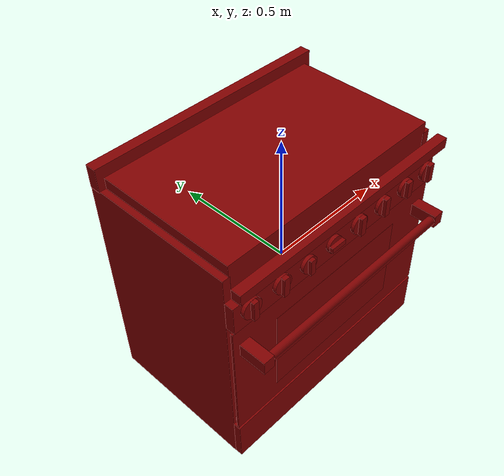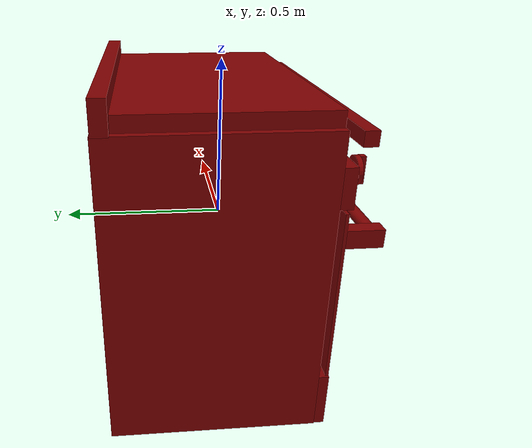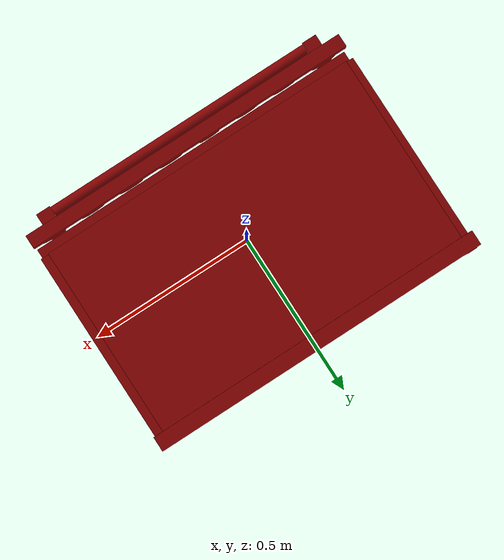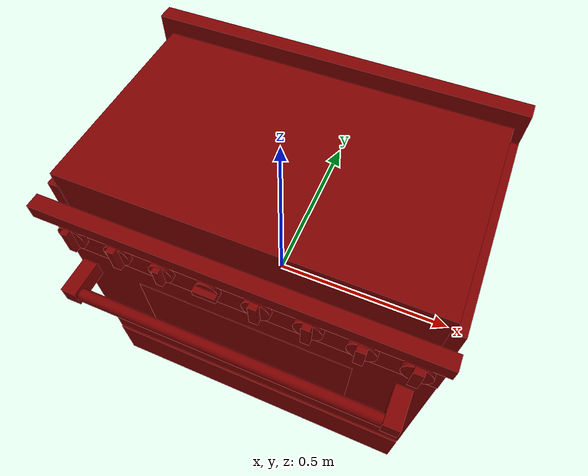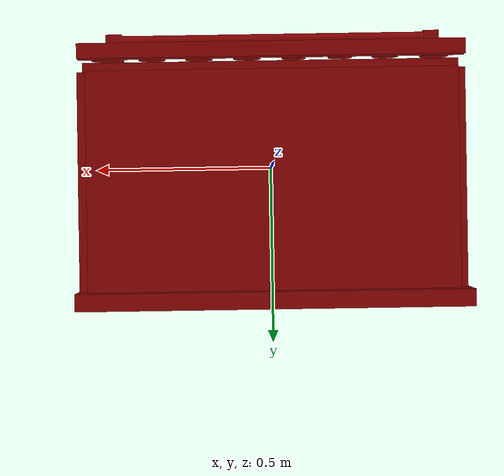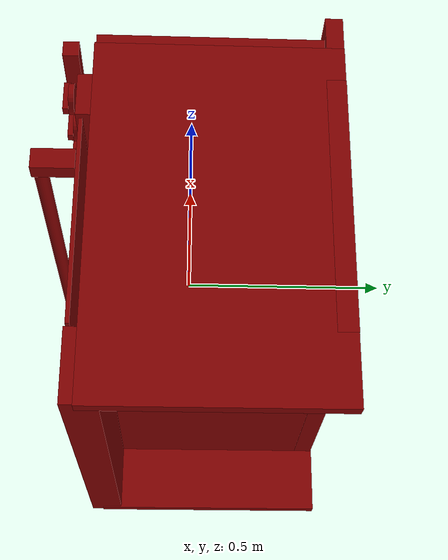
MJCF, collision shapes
<?xml version='1.0' encoding='UTF-8'?>
<mujoco model="model">
  <compiler angle="radian"/>
  <asset>
    <mesh file="visuals/knob_front_center.obj" name="knob_front_center_vis"/>
    <mesh file="visuals/knob_front_left.obj" name="knob_front_left_vis"/>
    <mesh file="visuals/knob_front_right.obj" name="knob_front_right_vis"/>
    <mesh file="visuals/knob_rear_center.obj" name="knob_rear_center_vis"/>
    <mesh file="visuals/knob_rear_left.obj" name="knob_rear_left_vis"/>
    <mesh file="visuals/knob_rear_right.obj" name="knob_rear_right_vis"/>
    <mesh file="visuals/Body001.obj" name="Body001_vis"/>
    <mesh file="visuals/Door001.obj" name="Door001_vis"/>
    <mesh file="visuals/Door001_Clear.obj" name="Door001_Clear_vis"/>
    <mesh file="visuals/Knob001.obj" name="Knob001_vis"/>
    <mesh file="visuals/Knob002.obj" name="Knob002_vis"/>
    <mesh file="visuals/Shelf001.obj" name="Shelf001_vis"/>
    <texture file="visuals/T_BC001.png" name="Body001_material" type="2d"/>
    <material name="Body001_material" rgba="1 1 1 1.0" texture="Body001_material" shininess="0.4472135901451111" specular="1"/>
    <texture file="visuals/T_BC001.png" name="knob_front_center_material" type="2d"/>
    <material name="knob_front_center_material" rgba="1 1 1 1.0" texture="knob_front_center_material" shininess="0.1" specular="1"/>
    <texture file="visuals/T_BC001.png" name="knob_front_left_material" type="2d"/>
    <material name="knob_front_left_material" rgba="1 1 1 1.0" texture="knob_front_left_material" shininess="0.1" specular="1"/>
    <texture file="visuals/T_BC001.png" name="knob_front_right_material" type="2d"/>
    <material name="knob_front_right_material" rgba="1 1 1 1.0" texture="knob_front_right_material" shininess="0.1" specular="1"/>
    <texture file="visuals/T_BC001.png" name="knob_rear_center_material" type="2d"/>
    <material name="knob_rear_center_material" rgba="1 1 1 1.0" texture="knob_rear_center_material" shininess="0.1" specular="1"/>
    <texture file="visuals/T_BC001.png" name="knob_rear_left_material" type="2d"/>
    <material name="knob_rear_left_material" rgba="1 1 1 1.0" texture="knob_rear_left_material" shininess="0.1" specular="1"/>
    <texture file="visuals/T_BC001.png" name="knob_rear_right_material" type="2d"/>
    <material name="knob_rear_right_material" rgba="1 1 1 1.0" texture="knob_rear_right_material" shininess="0.1" specular="1"/>
    <texture file="visuals/T_BC001.png" name="Door001_material" type="2d"/>
    <material name="Door001_material" rgba="1 1 1 1.0" texture="Door001_material" shininess="0.4472135901451111" specular="1"/>
    <texture file="visuals/T_BC001.png" name="Door001_Clear_material" type="2d"/>
    <material name="Door001_Clear_material" rgba="1 1 1 0.5" texture="Door001_Clear_material" shininess="0.4472135901451111" specular="1"/>
    <texture file="visuals/T_BC001.png" name="Knob001_material" type="2d"/>
    <material name="Knob001_material" rgba="1 1 1 1.0" texture="Knob001_material" shininess="0.1" specular="1"/>
    <texture file="visuals/T_BC001.png" name="Knob002_material" type="2d"/>
    <material name="Knob002_material" rgba="1 1 1 1.0" texture="Knob002_material" shininess="0.1" specular="1"/>
    <texture file="visuals/T_BC001.png" name="Shelf001_material" type="2d"/>
    <material name="Shelf001_material" rgba="1 1 1 1.0" texture="Shelf001_material" shininess="0.4472135901451111" specular="1"/>
  </asset>
  <default>
    <default class="visual">
      <geom conaffinity="0" contype="0" group="1" type="mesh"/>
    </default>
    <default class="collision">
      <geom group="0" rgba="0.5 0 0 0.5"/>
    </default>
    <default class="spawn">
      <geom group="0" rgba="1 1 1 0.5" contype="0" conaffinity="0"/>
      <site group="0" rgba="1 1 1 0.5"/>
    </default>
    <default class="region">
      <geom group="1" conaffinity="0" contype="0" rgba="0 1 0 0"/>
    </default>
  </default>
  <worldbody>
    <body>
      <body name="object">
        <site type="cylinder" rgba="0.3 0.4 1 0.5" size="0.051519475877285004 0.009580208919942379" pos="0.005171 -0.086495 0.370263" name="burner_on_front_center"/>
        <site type="cylinder" rgba="0.3 0.4 1 0.5" size="0.05259358137845993 0.009580207988619804" pos="-0.313772 -0.086539 0.370263" name="burner_on_front_left"/>
        <site type="cylinder" rgba="0.3 0.4 1 0.5" size="0.0517921969294548 0.009580208919942379" pos="0.315515 -0.086415 0.370263" name="burner_on_front_right"/>
        <site type="cylinder" rgba="0.3 0.4 1 0.5" size="0.053220707923173904 0.009580208919942379" pos="0.005111 0.177154 0.370263" name="burner_on_rear_center"/>
        <site type="cylinder" rgba="0.3 0.4 1 0.5" size="0.052564289420843124 0.009580207988619804" pos="-0.313815 0.177135 0.370263" name="burner_on_rear_left"/>
        <site type="cylinder" rgba="0.3 0.4 1 0.5" size="0.051473360508680344 0.009580208919942379" pos="0.315597 0.177182 0.370263" name="burner_on_rear_right"/>
        <geom mesh="Body001_vis" type="mesh" solimp="0.998 0.998 0.001" solref="0.001 1" density="100" friction="0.95 0.3 0.1" class="visual" material="Body001_material"/>
        <geom class="collision" type="box" pos="-0.000000 0.058646 -0.297793" size="0.4734897017478943 0.2936335504055023 0.02238655835390091" quat="1.0 0.0 0.0 0.0"/>
        <geom class="collision" type="box" pos="0.002355 0.064771 0.380102" size="0.46366578340530396 0.29686591029167175 0.07009365409612656" quat="1.0 0.0 0.0 0.0"/>
        <geom class="collision" type="box" pos="-0.471360 0.065419 -0.041394" size="0.014360162429511547 0.299012690782547 0.44883787631988525" quat="1.0 0.0 0.0 0.0"/>
        <geom class="collision" type="box" pos="0.004249 0.339073 -0.002047" size="0.4881504774093628 0.02380935288965702 0.31852978467941284" quat="1.0 0.0 0.0 0.0"/>
        <geom class="collision" type="box" pos="0.475933 0.064230 -0.041394" size="0.016268758103251457 0.29792290925979614 0.4488382935523987" quat="1.0 0.0 0.0 0.0"/>
        <geom class="collision" type="box" pos="0.003215 -0.222302 -0.402476" size="0.4885868430137634 0.04063500836491585 0.08542095124721527" quat="1.0 0.0 0.0 0.0"/>
        <geom class="collision" type="box" pos="0.001610 0.340070 0.449896" size="0.49018722772598267 0.021507272496819496 0.04477667808532715" quat="1.0 0.0 0.0 0.0"/>
        <geom class="collision" type="box" pos="0.003215 -0.247716 0.261504" size="0.48858678340911865 0.020799772813916206 0.05525397136807442" quat="1.0 0.0 0.0 0.0"/>
        <geom class="collision" type="box" pos="0.457162 0.051786 -0.092851" size="0.014702280052006245 0.2272758036851883 0.013303576037287712" quat="1.0 0.0 0.0 0.0"/>
        <geom class="collision" type="box" pos="-0.447462 0.051786 -0.092851" size="0.014702274464070797 0.2272758036851883 0.013303573243319988" quat="1.0 0.0 0.0 0.0"/>
        <geom class="collision" type="box" pos="-0.153318 0.049417 0.288317" size="0.014702167361974716 0.2776675522327423 0.08096408098936081" quat="1.0 0.0 0.0 0.0"/>
        <geom class="collision" type="box" pos="0.002128 -0.288065 0.387469" size="0.49051928520202637 0.019058873876929283 0.01997530832886696" quat="1.0 0.0 0.0 0.0"/>
        <geom class="collision" type="box" pos="0.162105 0.049417 0.288317" size="0.01470217201858759 0.2776676118373871 0.08096402138471603" quat="1.0 0.0 0.0 0.0"/>
        <body name="knob_front_center">
          <joint axis="0.0 -1.0 0.0" pos="0.063429 -0.281864 0.285431" limited="true" name="knob_front_center_joint" range="0.0 3.141592653589793" type="hinge" damping="0.05" armature="0.001"/>
          <geom mesh="knob_front_center_vis" type="mesh" solimp="0.998 0.998 0.001" solref="0.001 1" density="100" friction="0.95 0.3 0.1" class="visual" material="knob_front_center_material"/>
          <geom class="collision" type="cylinder" pos="0.063474 -0.283698 0.285494" size="0.03594965115189552 0.006550677120685577" quat="0.7071067094802856 0.70710688829422 0.0 0.0"/>
          <geom class="collision" type="box" pos="0.063079 -0.296127 0.286286" size="0.03639558330178261 0.008072574622929096 0.01135251298546791" quat="0.7071068286895752 -0.0 0.7071067690849304 0.0" name="knob_front_center_main"/>
        </body>
        <body name="knob_front_left">
          <joint axis="0.0 -1.0 0.0" pos="-0.425600 -0.284387 0.289937" limited="true" name="knob_front_left_joint" range="0.0 3.141592653589793" type="hinge" damping="0.05" armature="0.001"/>
          <geom mesh="knob_front_left_vis" type="mesh" solimp="0.998 0.998 0.001" solref="0.001 1" density="100" friction="0.95 0.3 0.1" class="visual" material="knob_front_left_material"/>
          <geom class="collision" type="cylinder" pos="-0.426328 -0.282909 0.290138" size="0.03757666423916817 0.006550677120685577" quat="0.7071067094802856 0.70710688829422 0.0 0.0"/>
          <geom class="collision" type="box" pos="-0.426007 -0.296127 0.290329" size="0.03639554977416992 0.008072574622929096 0.009832723066210747" quat="0.7071068286895752 -0.0 0.7071067690849304 0.0" name="knob_front_left_main"/>
        </body>
        <body name="knob_front_right">
          <joint axis="0.0 -1.0 0.0" pos="0.434842 -0.284387 0.286176" limited="true" name="knob_front_right_joint" range="0.0 3.141592653589793" type="hinge" damping="0.05" armature="0.001"/>
          <geom mesh="knob_front_right_vis" type="mesh" solimp="0.998 0.998 0.001" solref="0.001 1" density="100" friction="0.95 0.3 0.1" class="visual" material="knob_front_right_material"/>
          <geom class="collision" type="cylinder" pos="0.434850 -0.283747 0.284936" size="0.03655795007944107 0.006550677120685577" quat="0.7071067094802856 0.70710688829422 0.0 0.0"/>
          <geom class="collision" type="box" pos="0.434684 -0.296127 0.286727" size="0.03639554977416992 0.008072574622929096 0.012125452049076557" quat="0.7071068286895752 -0.0 0.7071067690849304 0.0" name="knob_front_right_main"/>
        </body>
        <body name="knob_rear_center">
          <joint axis="0.0 -1.0 0.0" pos="0.188542 -0.284387 0.285842" limited="true" name="knob_rear_center_joint" range="0.0 3.141592653589793" type="hinge" damping="0.05" armature="0.001"/>
          <geom mesh="knob_rear_center_vis" type="mesh" solimp="0.998 0.998 0.001" solref="0.001 1" density="100" friction="0.95 0.3 0.1" class="visual" material="knob_rear_center_material"/>
          <geom class="collision" type="cylinder" pos="0.188385 -0.282987 0.285933" size="0.03566603362560272 0.006550677120685577" quat="0.7071067094802856 0.70710688829422 0.0 0.0"/>
          <geom class="collision" type="box" pos="0.188413 -0.296127 0.287255" size="0.03639557212591171 0.008072574622929096 0.011259686201810837" quat="0.7071068286895752 -0.0 0.7071067690849304 0.0" name="knob_rear_center_main"/>
        </body>
        <body name="knob_rear_left">
          <joint axis="0.0 -1.0 0.0" pos="-0.298529 -0.284387 0.289937" limited="true" name="knob_rear_left_joint" range="0.0 3.141592653589793" type="hinge" damping="0.05" armature="0.001"/>
          <geom mesh="knob_rear_left_vis" type="mesh" solimp="0.998 0.998 0.001" solref="0.001 1" density="100" friction="0.95 0.3 0.1" class="visual" material="knob_rear_left_material"/>
          <geom class="collision" type="cylinder" pos="-0.298638 -0.283799 0.290138" size="0.03489376977086067 0.006550677120685577" quat="0.7071067094802856 0.70710688829422 0.0 0.0"/>
          <geom class="collision" type="box" pos="-0.298552 -0.296127 0.289547" size="0.03639554977416992 0.008072574622929096 0.010995949618518353" quat="0.7071068286895752 -0.0 0.7071067690849304 0.0" name="knob_rear_left_main"/>
        </body>
        <body name="knob_rear_right">
          <joint axis="0.0 -1.0 0.0" pos="0.312342 -0.284387 0.286176" limited="true" name="knob_rear_right_joint" range="0.0 3.141592653589793" type="hinge" damping="0.05" armature="0.001"/>
          <geom mesh="knob_rear_right_vis" type="mesh" solimp="0.998 0.998 0.001" solref="0.001 1" density="100" friction="0.95 0.3 0.1" class="visual" material="knob_rear_right_material"/>
          <geom class="collision" type="cylinder" pos="0.312461 -0.283406 0.285958" size="0.03535214811563492 0.006550677120685577" quat="0.7071067094802856 0.70710688829422 0.0 0.0"/>
          <geom class="collision" type="box" pos="0.312070 -0.296127 0.286731" size="0.032991424202919006 0.008072574622929096 0.011654136702418327" quat="0.7071068286895752 -0.0 0.7071067690849304 0.0" name="knob_rear_right_main"/>
        </body>
        <body name="Door001">
          <joint axis="1.0 0.0 0.0" pos="0.002276 -0.266138 -0.336228" limited="true" name="Door001_joint" range="0.0 1.5707963267948966" type="hinge" damping="1" frictionloss="1" armature=".01" stiffness="1" springref="-1"/>
          <geom mesh="Door001_vis" type="mesh" solimp="0.998 0.998 0.001" solref="0.001 1" density="100" friction="0.95 0.3 0.1" class="visual" material="Door001_material"/>
          <geom class="collision" type="box" pos="0.003627 -0.254833 -0.057732" size="0.48967069387435913 0.004617785569280386 0.25291186571121216" quat="1.0 0.0 0.0 0.0"/>
          <geom class="collision" type="cylinder" pos="-0.000250 -0.351020 0.110825" size="0.01760648936033249 0.42965009808540344" quat="0.7071068286895752 -0.0 0.7071067690849304 0.0"/>
          <geom class="collision" type="box" pos="-0.444097 -0.317573 0.112272" size="0.021696677431464195 0.051635123789310455 0.025740765035152435" quat="1.0 0.0 0.0 0.0"/>
          <geom class="collision" type="box" pos="0.430180 -0.317573 0.112272" size="0.021696677431464195 0.051635123789310455 0.02574075199663639" quat="1.0 0.0 0.0 0.0"/>
          <body name="Door001_Clear">
            <geom mesh="Door001_Clear_vis" type="mesh" solimp="0.998 0.998 0.001" solref="0.001 1" density="100" friction="0.95 0.3 0.1" class="visual" material="Door001_Clear_material"/>
            <geom class="collision" type="box" pos="0.000888 -0.262130 -0.062745" size="0.3011172413825989 0.0008068492752499878 0.17353901267051697" quat="1.0 0.0 0.0 0.0"/>
          </body>
        </body>
        <body name="Knob001">
          <joint axis="0.0 1.0 0.0" pos="-0.180808 -0.281864 0.284594" limited="true" name="Knob001_joint" range="0.0 3.979350694547071" type="hinge" damping="0.05" armature="0.001"/>
          <geom mesh="Knob001_vis" type="mesh" solimp="0.998 0.998 0.001" solref="0.001 1" density="100" friction="0.95 0.3 0.1" class="visual" material="Knob001_material"/>
          <geom class="collision" type="cylinder" pos="-0.180829 -0.283933 0.284438" size="0.031847357749938965 0.006550677120685577" quat="0.7071067094802856 0.70710688829422 0.0 0.0"/>
          <geom class="collision" type="box" pos="-0.181595 -0.296127 0.283998" size="0.030238941311836243 0.008072574622929096 0.009580874815583229" quat="0.7071067690849304 0.0 0.7071067690849304 0.0"/>
        </body>
        <body name="Knob002">
          <joint axis="0.0 1.0 0.0" pos="-0.059474 -0.281864 0.284763" limited="true" name="Knob002_joint" range="0.0 3.141592653589793" type="hinge" damping="0.05" armature="0.001"/>
          <geom mesh="Knob002_vis" type="mesh" solimp="0.998 0.998 0.001" solref="0.001 1" density="100" friction="0.95 0.3 0.1" class="visual" material="Knob002_material"/>
          <geom class="collision" type="cylinder" pos="-0.059840 -0.283037 0.284456" size="0.03162483498454094 0.006550677120685577" quat="0.7071067094802856 0.70710688829422 0.0 0.0"/>
          <geom class="collision" type="box" pos="-0.059765 -0.296127 0.285611" size="0.00951886922121048 0.008072574622929096 0.030238952487707138" quat="0.7071067690849304 0.0 0.7071067690849304 0.0"/>
        </body>
        <body name="Shelf001">
          <joint axis="0.0 -1.0 0.0" pos="0.003789 0.013142 -0.083647" limited="true" name="Shelf001_joint" range="0.0 0.3" type="slide" damping="1" frictionloss="1" armature=".01" stiffness="0.05"/>
          <geom mesh="Shelf001_vis" type="mesh" solimp="0.998 0.998 0.001" solref="0.001 1" density="100" friction="0.95 0.3 0.1" class="visual" material="Shelf001_material"/>
          <geom class="collision" type="box" pos="0.005125 0.009254 -0.078952" size="0.4218016266822815 0.2038833200931549 0.0034588007256388664" quat="1.0 0.0 0.0 0.0"/>
        </body>
        <site name="burner_front_center_place_site" type="cylinder" rgba="0.3 0.4 1 0" size="0.051519475877285004 0.009580208919942379" pos="0.005171 -0.086495 0.370263"/>
        <site name="burner_front_left_place_site" type="cylinder" rgba="0.3 0.4 1 0" size="0.05259358137845993 0.009580207988619804" pos="-0.313772 -0.086539 0.370263"/>
        <site name="burner_front_right_place_site" type="cylinder" rgba="0.3 0.4 1 0" size="0.0517921969294548 0.009580208919942379" pos="0.315515 -0.086415 0.370263"/>
        <site name="burner_rear_center_place_site" type="cylinder" rgba="0.3 0.4 1 0" size="0.053220707923173904 0.009580208919942379" pos="0.005111 0.177154 0.370263"/>
        <site name="burner_rear_left_place_site" type="cylinder" rgba="0.3 0.4 1 0" size="0.052564289420843124 0.009580207988619804" pos="-0.313815 0.177135 0.370263"/>
        <site name="burner_rear_right_place_site" type="cylinder" rgba="0.3 0.4 1 0" size="0.051473360508680344 0.009580208919942379" pos="0.315597 0.177182 0.370263"/>
        <geom class="region" name="reg_main" type="box" pos="0.001915 0.047961000000000004 -0.04321850000000002" size="0.492806 0.31659400000000004 0.45066249999999997"/>
        <geom class="region" name="reg_int" type="box" pos="0.0024875000000000036 0.04510150000000002 0.019207999999999975" size="0.46435150000000003 0.2751135 0.297235"/>
      </body>
    </body>
  </worldbody>
  <actuator>
    <motor name="knob_front_center_joint_actuator" joint="knob_front_center_joint" gear="10"/>
    <motor name="knob_front_left_joint_actuator" joint="knob_front_left_joint" gear="10"/>
    <motor name="knob_front_right_joint_actuator" joint="knob_front_right_joint" gear="10"/>
    <motor name="knob_rear_center_joint_actuator" joint="knob_rear_center_joint" gear="10"/>
    <motor name="knob_rear_left_joint_actuator" joint="knob_rear_left_joint" gear="10"/>
    <motor name="knob_rear_right_joint_actuator" joint="knob_rear_right_joint" gear="10"/>
    <motor name="Door001_joint_actuator" joint="Door001_joint" gear="50"/>
    <motor name="Knob001_joint_actuator" joint="Knob001_joint" gear="50"/>
    <motor name="Knob002_joint_actuator" joint="Knob002_joint" gear="50"/>
    <motor name="Shelf001_joint_actuator" joint="Shelf001_joint" gear="50"/>
  </actuator>
</mujoco>
